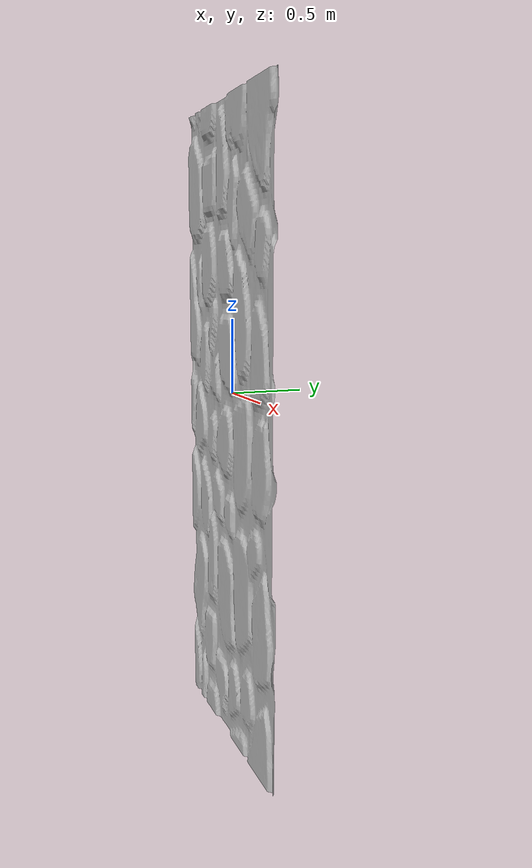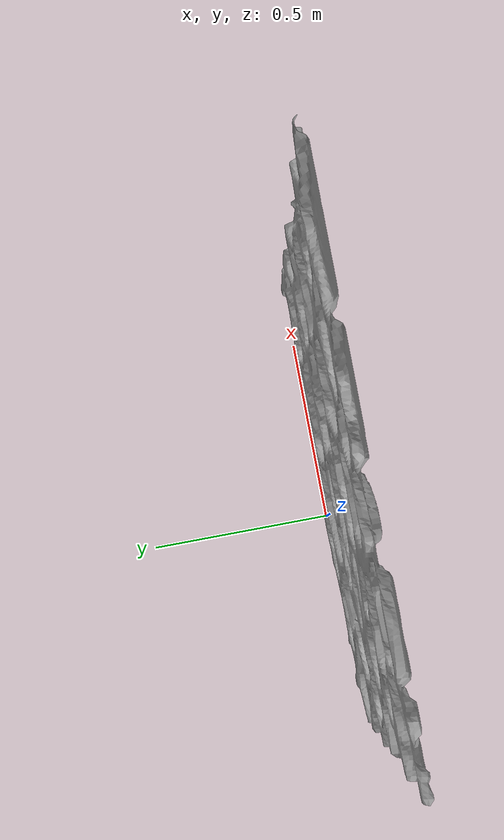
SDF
<?xml version="1.0" ?>
<sdf version="1.4">
	<model name="cobblestones">
		<static>true</static>
		<link name="link">
			<pose>0 0 -0.275 1.5708 0 0</pose>
			<collision name="collision">
				<geometry>
					<mesh>
						<uri>model://cobblestones_3/mesh/cobblestones.dae</uri>
						<scale>0.175 0.475 0.175</scale>
					</mesh>
				</geometry>
				<surface>
					<bounce>
						<restitution_coefficient>0.01</restitution_coefficient>
						<threshold>5.0</threshold>
					</bounce>
					<friction>
						<ode>
							<mu>10</mu>
							<mu2>10</mu2>
						</ode>
					</friction>
					<contact>
						<ode>
							<soft_cfm>0.001</soft_cfm>
							<kp>100000.0</kp>
							<kd>1000.0</kd>
						</ode>
					</contact>
				</surface>
			</collision>
			<visual name="visual">
				<geometry>
					<mesh>
						<uri>model://cobblestones_3/mesh/cobblestones.dae</uri>
						<scale>0.175 0.475 0.175</scale>
					</mesh>
				</geometry>
			</visual>
		</link>
	</model>
</sdf>
